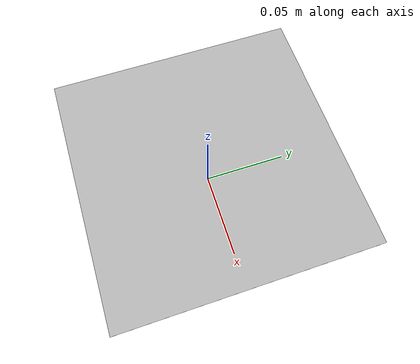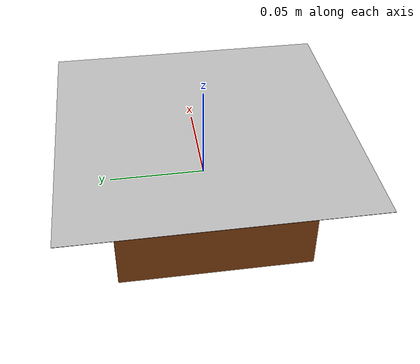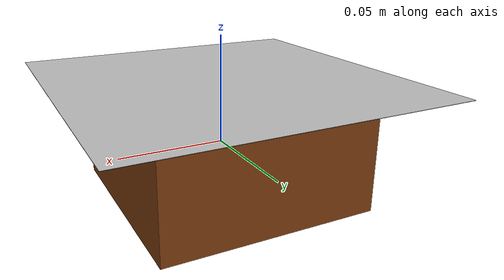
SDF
<?xml version="1.0" ?>
<sdf version="1.6">
  <!-- Define small box with ArUco marker -->
  <model name="small_box_marker_2">

    <!-- Include the pre-existing small_box model -->
    <include>
      <uri>model://small_box</uri> <!-- Reference the ArUco marker model -->
      <!-- Keep the small box at its default position without rotation -->
      <pose>0 0 0 0 0 0</pose> <!-- Box position is relative to the model's origin -->
    </include>

    <!-- Include the pre-existing ArUco marker model -->
    <include>
      <uri>model://aruco_marker_2</uri>
      <!-- Apply rotation only to the marker -->
      <pose>0 0 0.03 0 -1.5708 0</pose> <!-- Marker 3cm above box, with rotation -->
    </include>

    <!-- Optional: Joint to make the box and marker a single object -->
    <joint name="fixed_joint" type="fixed">
      <parent>small_box::box_link</parent>
      <child>aruco_marker_2::link</child> <!-- Make sure the link name matches the ArUco model -->
    </joint>

  </model>
</sdf>

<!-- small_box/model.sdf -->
<sdf version="1.6">
  <!-- Define small box -->
  <model name="small_box">
    <link name="box_link">
      <visual name="visual">
        <geometry>
          <box>
            <size>0.1 0.1 0.05</size> <!-- Width, Depth, Height -->
          </box>
        </geometry>
        <material>
    	  <ambient>0.545 0.271 0.075 1.0</ambient> <!-- Brown color -->
    	  <diffuse>0.545 0.271 0.075 1.0</diffuse> <!-- Brown color -->
    	  <specular>0.2 0.1 0.05 1.0</specular>    <!-- Slightly lighter specular component -->
    	  <emissive>0.0 0.0 0.0 1.0</emissive>     <!-- No emissive light -->
	</material>
      </visual>
      <collision name="collision">
        <geometry>
          <box>
            <size>0.1 0.1 0.05</size>
          </box>
        </geometry>
      </collision>
      <inertial>
        <mass>0.05</mass> <!-- Adjust mass as needed -->
        <inertia>
          <ixx>0.001</ixx>
          <ixy>0</ixy>
          <ixz>0</ixz>
          <iyy>0.001</iyy>
          <iyz>0</iyz>
          <izz>0.001</izz>
        </inertia>
      </inertial>
    </link>
  </model>
</sdf>

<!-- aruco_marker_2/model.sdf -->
<sdf version="1.6">
  <model name="aruco_marker_2">
    <link name="link">
      <inertial>
        <pose>0 0 0 0 0 0</pose>
        <mass>0.001</mass>
        <inertia>
          <ixx>3.7499999999999997e-06</ixx>
          <ixy>0.0</ixy>
          <ixz>0.0</ixz>
          <iyy>1.8750008333333333e-06</iyy>
          <iyz>0.0</iyz>
          <izz>1.8750008333333333e-06</izz>
        </inertia>
      </inertial>
      <visual name="front_visual">
        <pose>0.00005 0 0 0 0 0</pose>
        <geometry>
          <box>
            <size>0.0001 0.15 0.15</size>
          </box>
        </geometry>
        <material>
          <script>
            <uri>model://aruco_marker_2/materials/scripts</uri>
            <uri>model://aruco_marker_2/materials/textures</uri>
            <name>Marker2</name>
          </script>
        </material>
      </visual>
      <!-- Hide the marker from the back -->
      <visual name="rear_visual">
        <pose>-0.00005 0 0 0 0 0</pose>
        <geometry>
          <box>
            <size>0.0001 0.15 0.15</size>
          </box>
        </geometry>
      </visual>
      <collision name="collision">
        <pose>0 0 0 0 0 0</pose>
        <geometry>
          <box>
            <size>0.0001 0.15 0.15</size>
          </box>
        </geometry>
      </collision>
    </link>
  </model>
</sdf>
